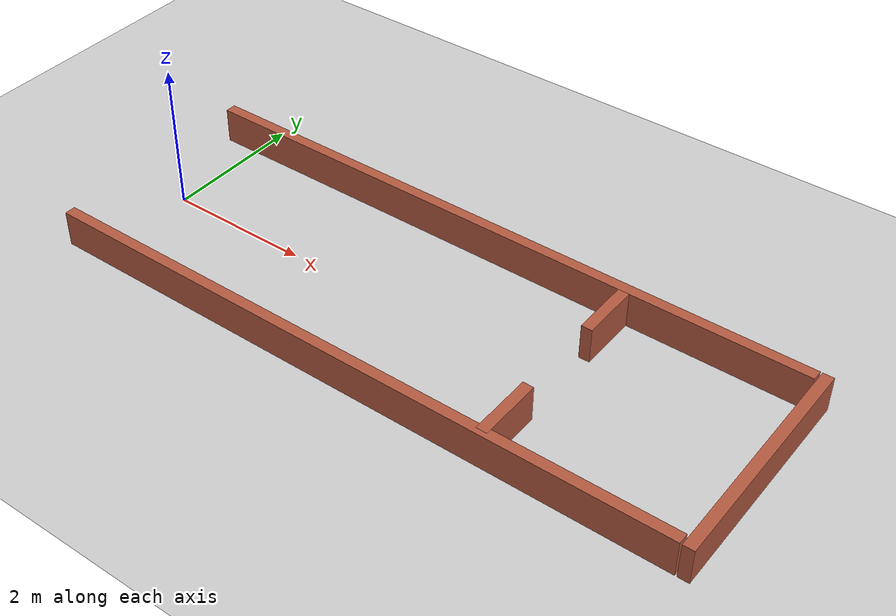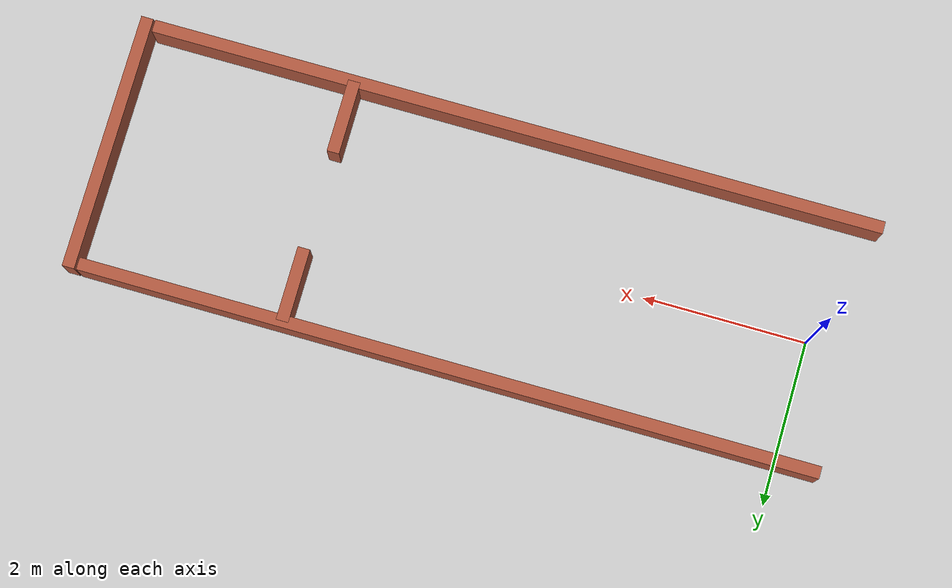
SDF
<?xml version="1.0"?>
<!-- BeetleBot simulation world: 3 m wide corridor with a doorway and a bend
     Obstacles are 0.5 m tall so they are seen by the RPLidar C1 at its
     documented 0.206 m mounting height. -->
<sdf version="1.9">
  <world name="corridor">
    <physics name="1ms" type="ignored">
      <max_step_size>0.002</max_step_size>
      <real_time_factor>1.0</real_time_factor>
    </physics>
    <plugin filename="gz-sim-physics-system" name="gz::sim::systems::Physics"/>
    <plugin filename="gz-sim-user-commands-system" name="gz::sim::systems::UserCommands"/>
    <plugin filename="gz-sim-scene-broadcaster-system" name="gz::sim::systems::SceneBroadcaster"/>
    <plugin filename="gz-sim-sensors-system" name="gz::sim::systems::Sensors">
      <render_engine>ogre2</render_engine>
    </plugin>
    <plugin filename="gz-sim-imu-system" name="gz::sim::systems::Imu"/>
    <gravity>0 0 -9.8</gravity>
    <light type="directional" name="sun">
      <cast_shadows>false</cast_shadows>
      <pose>0 0 10 0 0 0</pose>
      <diffuse>0.9 0.9 0.9 1</diffuse><specular>0.2 0.2 0.2 1</specular>
      <direction>-0.3 0.2 -0.9</direction>
    </light>
    <model name="ground_plane">
      <static>true</static>
      <link name="link">
        <collision name="collision">
          <geometry><plane><normal>0 0 1</normal><size>60 60</size></plane></geometry>
          <surface><friction><ode><mu>1.0</mu><mu2>1.0</mu2></ode></friction></surface>
        </collision>
        <visual name="visual">
          <geometry><plane><normal>0 0 1</normal><size>60 60</size></plane></geometry>
          <material><ambient>0.8 0.8 0.8 1</ambient><diffuse>0.8 0.8 0.8 1</diffuse></material>
        </visual>
      </link>
    </model>
    <model name="wall_l">
      <static>true</static><pose>4.0 1.5 0.25 0 0 0</pose>
      <link name="link">
        <collision name="collision"><geometry><box><size>9.0 0.15 0.5</size></box></geometry></collision>
        <visual name="visual"><geometry><box><size>9.0 0.15 0.5</size></box></geometry>
          <material><ambient>0.6 0.3 0.2 1</ambient><diffuse>0.7 0.35 0.25 1</diffuse></material></visual>
      </link>
    </model>
    <model name="wall_r">
      <static>true</static><pose>4.0 -1.5 0.25 0 0 0</pose>
      <link name="link">
        <collision name="collision"><geometry><box><size>9.0 0.15 0.5</size></box></geometry></collision>
        <visual name="visual"><geometry><box><size>9.0 0.15 0.5</size></box></geometry>
          <material><ambient>0.6 0.3 0.2 1</ambient><diffuse>0.7 0.35 0.25 1</diffuse></material></visual>
      </link>
    </model>
    <model name="wall_end">
      <static>true</static><pose>8.6 0.0 0.25 0 0 0</pose>
      <link name="link">
        <collision name="collision"><geometry><box><size>0.15 3.15 0.5</size></box></geometry></collision>
        <visual name="visual"><geometry><box><size>0.15 3.15 0.5</size></box></geometry>
          <material><ambient>0.6 0.3 0.2 1</ambient><diffuse>0.7 0.35 0.25 1</diffuse></material></visual>
      </link>
    </model>
    <model name="door_a">
      <static>true</static><pose>6.0 1.05 0.25 0 0 0</pose>
      <link name="link">
        <collision name="collision"><geometry><box><size>0.15 0.9 0.5</size></box></geometry></collision>
        <visual name="visual"><geometry><box><size>0.15 0.9 0.5</size></box></geometry>
          <material><ambient>0.6 0.3 0.2 1</ambient><diffuse>0.7 0.35 0.25 1</diffuse></material></visual>
      </link>
    </model>
    <model name="door_b">
      <static>true</static><pose>6.0 -1.05 0.25 0 0 0</pose>
      <link name="link">
        <collision name="collision"><geometry><box><size>0.15 0.9 0.5</size></box></geometry></collision>
        <visual name="visual"><geometry><box><size>0.15 0.9 0.5</size></box></geometry>
          <material><ambient>0.6 0.3 0.2 1</ambient><diffuse>0.7 0.35 0.25 1</diffuse></material></visual>
      </link>
    </model>
  </world>
</sdf>
